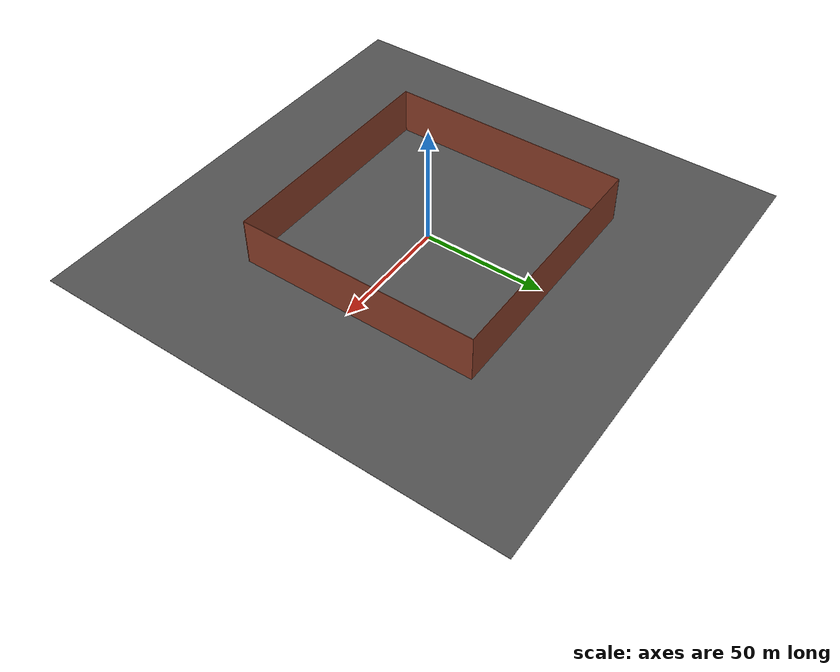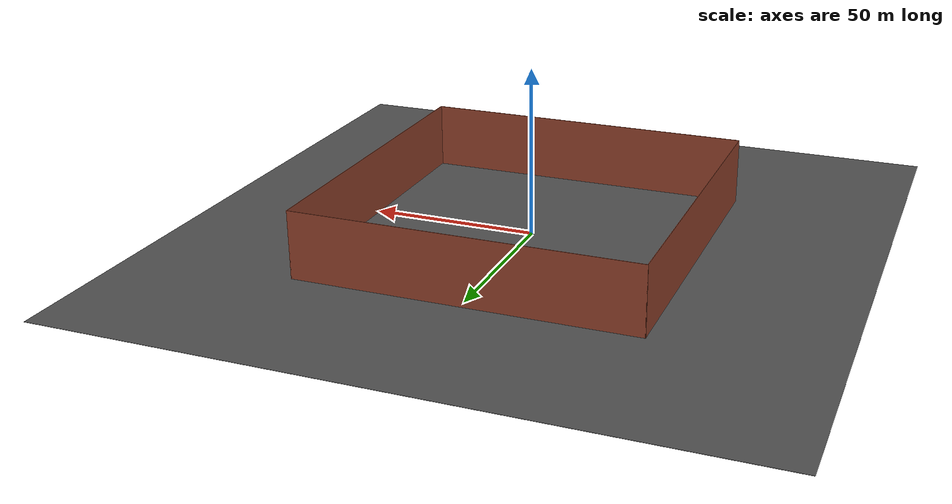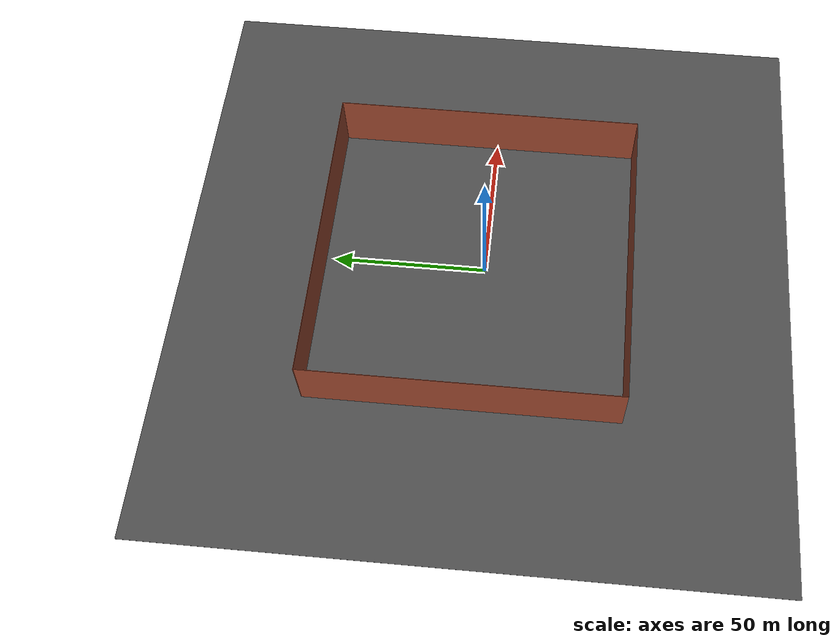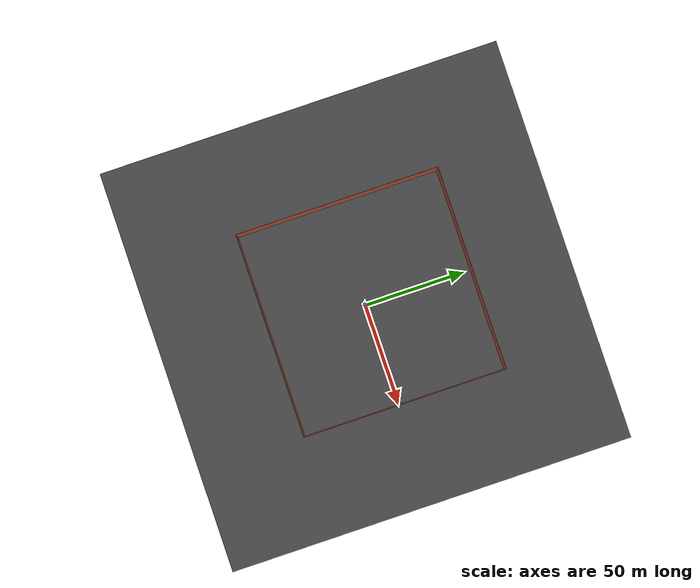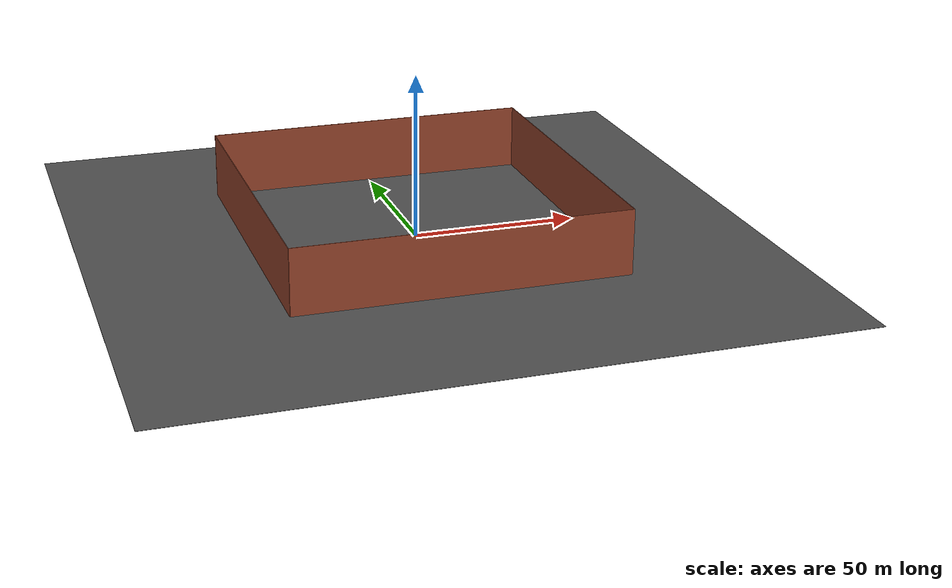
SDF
<sdf version="1.6">
 <world name="vrc_task_1">
  <scene><ambient>0.4 0.4 0.4 1</ambient><background>0.7 0.7 0.7 1</background><shadows>1</shadows></scene>
  <physics name="default_physics" default="0" type="ode">
   <ode>
    <solver>
     <type>quick</type>
     <iters>10</iters>
     <sor>1</sor>
     <use_dynamic_moi_rescaling>0</use_dynamic_moi_rescaling>
    </solver>
    <constraints>
     <cfm>0</cfm>
     <erp>0.2</erp>
     <contact_max_correcting_vel>100</contact_max_correcting_vel>
     <contact_surface_layer>0.001</contact_surface_layer>
    </constraints>
   </ode>
   <max_step_size>0.004</max_step_size>
   <real_time_factor>1</real_time_factor>
   <real_time_update_rate>250</real_time_update_rate>
  </physics>
  <light name="sun" type="directional">
   <pose>0 0 10 0 -0 0</pose>
   <diffuse>0.8 0.8 0.8 1</diffuse>
   <specular>0.2 0.2 0.2 1</specular>
   <attenuation>
    <range>1000</range>
    <constant>0.9</constant>
    <linear>0.01</linear>
    <quadratic>0.001</quadratic>
   </attenuation>
   <direction>-0.5 0.1 -0.9</direction>
  </light>
  <gravity>0 0 -9.8066</gravity>
  <magnetic_field>6e-06 2.3e-05 -4.2e-05</magnetic_field>
  <atmosphere type="adiabatic"/>
  <spherical_coordinates>
   <surface_model>EARTH_WGS84</surface_model>
   <latitude_deg>0</latitude_deg>
   <longitude_deg>0</longitude_deg>
   <elevation>0</elevation>
   <heading_deg>0</heading_deg>
  </spherical_coordinates>
  <model name="asphalt_plane">
   <static>1</static>
   <link name="link">
    <collision name="collision"><geometry><box><size>200 200 0.1</size></box></geometry></collision>
    <visual name="visual">
     <cast_shadows>0</cast_shadows>
     <geometry><box><size>200 200 0.1</size></box></geometry>
     <material>
      <script>
       <uri>model://asphalt_plane/materials/scripts</uri>
       <uri>model://asphalt_plane/materials/textures</uri>
       <name>vrc/asphalt</name>
      </script>
     </material>
    </visual>
   </link>
  </model>
  <model name="boundary">
   <pose>-0.104185 2.98782 0 0 -0 0</pose>
   <link name="Wall_0">
    <collision name="Wall_0_Collision">
     <geometry><box><size>100.15 0.15 20</size></box></geometry>
     <pose>0 0 10 0 -0 0</pose>
    </collision>
    <visual name="Wall_0_Visual">
     <pose>0 0 10 0 -0 0</pose>
     <geometry><box><size>100.15 0.15 20</size></box></geometry>
     <material>
      <script><uri>file://media/materials/scripts/gazebo.material</uri><name>Gazebo/Bricks</name></script>
      <ambient>1 1 1 1</ambient>
     </material>
     <meta><layer>0</layer></meta>
    </visual>
    <pose>-0.041498 50 0 0 -0 0</pose>
   </link>
   <link name="Wall_2">
    <collision name="Wall_2_Collision">
     <geometry><box><size>100.15 0.15 20</size></box></geometry>
     <pose>0 0 10 0 -0 0</pose>
    </collision>
    <visual name="Wall_2_Visual">
     <pose>0 0 10 0 -0 0</pose>
     <geometry><box><size>100.15 0.15 20</size></box></geometry>
     <material>
      <script><uri>file://media/materials/scripts/gazebo.material</uri><name>Gazebo/Bricks</name></script>
      <ambient>1 1 1 1</ambient>
     </material>
     <meta><layer>0</layer></meta>
    </visual>
    <pose>49.9585 0 0 0 -0 -1.5708</pose>
   </link>
   <link name="Wall_4">
    <collision name="Wall_4_Collision">
     <geometry><box><size>100.233 0.15 20</size></box></geometry>
     <pose>0 0 10 0 -0 0</pose>
    </collision>
    <visual name="Wall_4_Visual">
     <pose>0 0 10 0 -0 0</pose>
     <geometry><box><size>100.233 0.15 20</size></box></geometry>
     <material>
      <script><uri>file://media/materials/scripts/gazebo.material</uri><name>Gazebo/Bricks</name></script>
      <ambient>1 1 1 1</ambient>
     </material>
     <meta><layer>0</layer></meta>
    </visual>
    <pose>2e-06 -50 0 0 -0 3.14159</pose>
   </link>
   <link name="Wall_6">
    <collision name="Wall_6_Collision">
     <geometry><box><size>100.15 0.15 20</size></box></geometry>
     <pose>0 0 10 0 -0 0</pose>
    </collision>
    <visual name="Wall_6_Visual">
     <pose>0 0 10 0 -0 0</pose>
     <geometry><box><size>100.15 0.15 20</size></box></geometry>
     <material>
      <script><uri>file://media/materials/scripts/gazebo.material</uri><name>Gazebo/Bricks</name></script>
      <ambient>1 1 1 1</ambient>
     </material>
     <meta><layer>0</layer></meta>
    </visual>
    <pose>-50.0415 0 0 0 -0 -1.5708</pose>
   </link>
   <static>1</static>
  </model>
 </world>
</sdf>
